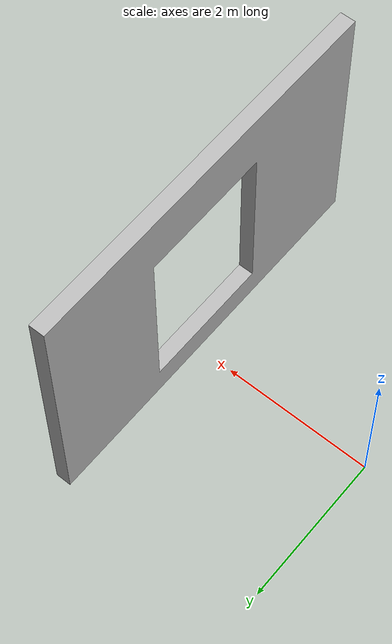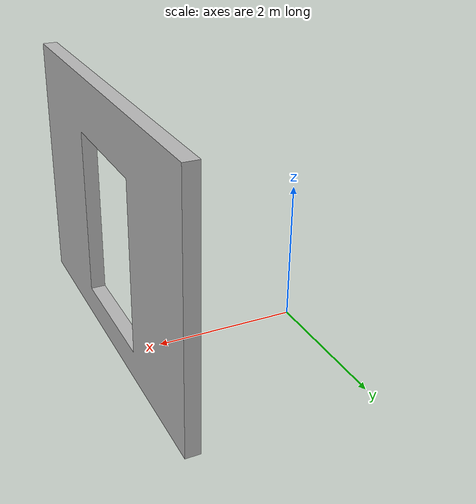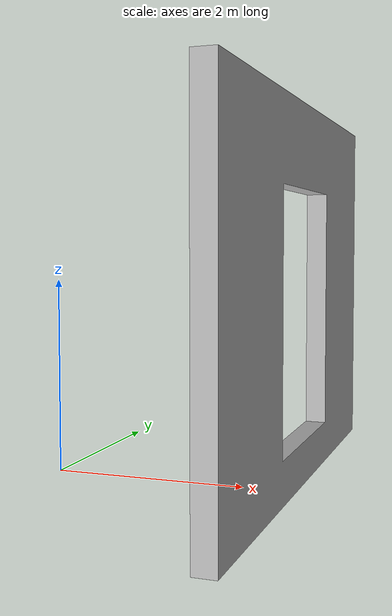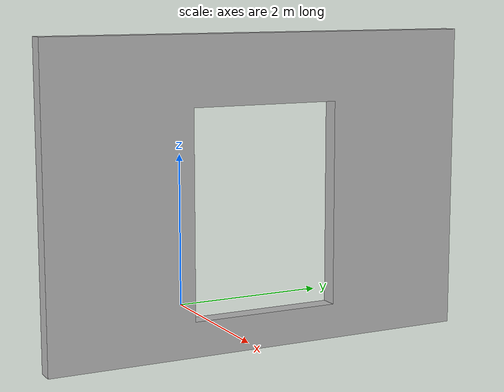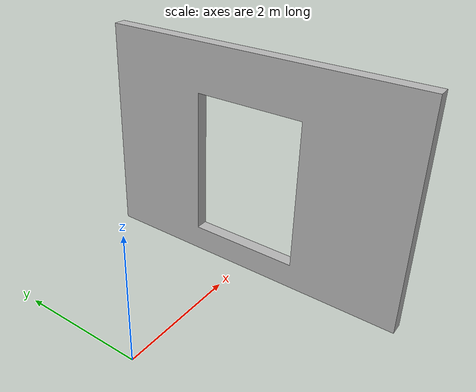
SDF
<?xml version="1.0"?>
<sdf version="1.5">
    <model name="house_wall_6">
        <static>true</static>
        <link name="link">
            <collision name="collision_wall">
                <pose>0 0 0.05 0 0 0</pose>
                <geometry>
                    <mesh>
                        <uri>model://house_scene_2_wall_6/meshes/sc6qr.dae</uri>
                    </mesh>
                </geometry>
            </collision>
            <visual name="visual_walls">
              <pose>0 0 0.05 0 0 0</pose>
              <geometry>
              <mesh>
                 <uri>model://house_scene_2_wall_6/meshes/sc6qr.dae</uri>
              </mesh>
              </geometry>
             </visual>
        </link>
    </model>
</sdf>
